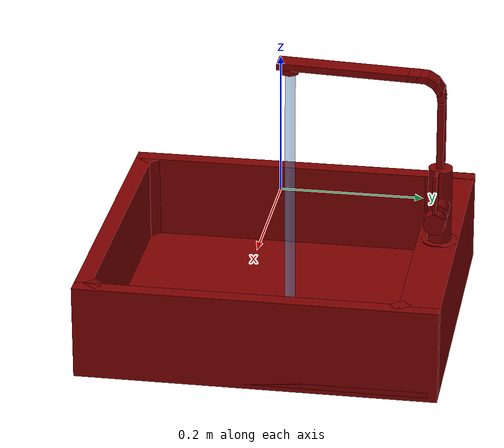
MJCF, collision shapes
<?xml version='1.0' encoding='UTF-8'?>
<mujoco model="model">
  <option timestep="0.002" gravity="0.0 0.0 -9.81"/>
  <compiler angle="radian"/>
  <asset>
    <mesh file="visuals/handle.obj" name="handle_vis"/>
    <mesh file="visuals/Body001.obj" name="Body001_vis"/>
    <mesh file="visuals/spout.obj" name="spout_vis"/>
    <texture file="visuals/T_BC001.png" name="Body001_material" type="2d"/>
    <material name="Body001_material" rgba="1 1 1 1.0" texture="Body001_material" shininess="0.1" specular="5"/>
    <texture file="visuals/T_BC001.png" name="handle_material" type="2d"/>
    <material name="handle_material" rgba="1 1 1 1.0" texture="handle_material" shininess="0.1" specular="5"/>
    <texture file="visuals/T_BC001.png" name="spout_material" type="2d"/>
    <material name="spout_material" rgba="1 1 1 1.0" texture="spout_material" shininess="0.1" specular="5"/>
  </asset>
  <default>
    <default class="visual">
      <geom conaffinity="0" contype="0" group="1" type="mesh"/>
    </default>
    <default class="collision">
      <geom group="0" rgba="0.5 0 0 0.5" solimp="0.998 0.998 0.001" solref="0.001 2"/>
    </default>
    <default class="spawn">
      <geom group="0" rgba="1 1 1 0.5" contype="0" conaffinity="0"/>
      <site group="0" rgba="1 1 1 0.5"/>
    </default>
    <default class="region">
      <geom group="1" conaffinity="0" contype="0" rgba="0 1 0 0"/>
    </default>
  </default>
  <worldbody>
    <body>
      <body name="object">
        <geom mesh="Body001_vis" type="mesh" solimp="0.998 0.998 0.001" solref="0.001 1" friction="0.95 0.3 0.1" class="visual" material="Body001_material"/>
        <geom type="cylinder" pos="0.00013274 0.22498367 -0.00581795" size="0.016698651015758514 0.0544344037771225" quat="0.7071067094802856 0.0 0.0 -0.7071068286895752" class="collision"/>
        <geom type="cylinder" pos="0.00022893 0.22498367 -0.06293694" size="0.025238705798983574 0.002348281443119049" quat="0.7071067094802856 0.0 0.0 -0.7071068286895752" class="collision"/>
        <geom type="cylinder" pos="0.02158878 0.22498367 -0.00602341" size="0.015174861997365952 0.020444747060537338" quat="0.7071068286895752 1.2101623703131281e-08 0.7071067690849304 -1.2101622814952862e-08" class="collision"/>
        <geom type="box" pos="-0.22326328 0.00000023 -0.12871663" size="0.011260626837611198 0.2513779401779175 0.06668765842914581" quat="1.0 0.0 0.0 0.0" class="collision"/>
        <geom type="box" pos="0.22334352 0.00000028 -0.12871663" size="0.01118035800755024 0.25137773156166077 0.06668759137392044" quat="1.0 0.0 0.0 0.0" class="collision"/>
        <geom type="box" pos="-0.00872150 -0.23940448 -0.12871663" size="0.2252243608236313 0.011973206885159016 0.06668765097856522" quat="1.0 0.0 0.0 0.0" class="collision"/>
        <geom type="box" pos="0.00000001 0.00042350 -0.18852685" size="0.2345239818096161 0.2374589592218399 0.006877496372908354" quat="1.0 0.0 0.0 0.0" class="collision"/>
        <geom type="box" pos="-0.00872148 0.22295270 -0.12871662" size="0.22522711753845215 0.028425544500350952 0.06668765097856522" quat="1.0 0.0 0.0 0.0" class="collision"/>
        <geom type="box" pos="0.21455719 -0.22357739 -0.12871663" size="0.011599640361964703 0.009580041281878948 0.06668764352798462" quat="0.43918120861053467 -3.5775858719944154e-08 7.318384831478397e-08 -0.8983985185623169" class="collision"/>
        <geom type="box" pos="-0.21049516 -0.22902475 -0.12871663" size="0.011599640361964703 0.009580040350556374 0.06668765842914581" quat="0.338575154542923 -2.7580441042118764e-08 -7.664925050221427e-08 0.9409393668174744" class="collision"/>
        <geom type="box" pos="-0.21331194 0.19395523 -0.12871662" size="0.011599640361964703 0.009580041281878948 0.06668766587972641" quat="0.9065268039703369 -7.38459888793841e-08 -3.4388353498115976e-08 0.422148197889328" class="collision"/>
        <geom type="box" pos="0.21394131 0.19671448 -0.12871663" size="0.011599640361964703 0.009580041281878948 0.06668765097856522" quat="0.9206199645996094 -7.49940269884064e-08 3.180697660809528e-08 -0.3904598355293274" class="collision"/>
        <body name="handle">
          <joint axis="1.0 0.0 0.0" pos="0.05916828 0.22499300 -0.00593547" limited="true" name="handle_temp_joint" type="hinge" range="-0.7853981633974483 0.7853981633974483" damping="0.5" frictionloss="1" armature="2"/>
          <joint axis="0.0 1.0 0.0" pos="0.05916828 0.22499300 -0.00593547" limited="true" name="handle_joint" type="hinge" range="0 0.5" damping="0.5" frictionloss="1" armature="2"/>
          <geom mesh="handle_vis" type="mesh" solimp="0.998 0.998 0.001" solref="0.001 1" friction="0.95 0.3 0.1" class="visual" material="handle_material"/>
          <geom name="handle_main" type="box" pos="0.05939483 0.22498367 0.03646419" size="0.012284789234399796 0.0028118211776018143 0.028053397312760353" quat="1.0 0.0 0.0 0.0" class="collision"/>
          <geom type="cylinder" pos="0.06279292 0.22498367 -0.00666502" size="0.015174861997365952 0.009489334188401699" quat="0.7071068286895752 1.2101623703131281e-08 0.7071067690849304 -1.2101622814952862e-08" class="collision"/>
        </body>
        <body name="spout">
          <joint axis="0.0 0.0 1.0" pos="0.00020842 0.22513611 0.11921735" limited="true" name="spout_joint" range="-0.7853981633974483 0.7853981633974483" type="hinge" damping="10"/>
          <site type="cylinder" rgba="0.5 0.75 1 0.5" size="0.007300759665668011 0.18885229527950287" pos="-0.00017486 0.01323098 0.00154263" name="water"/>
          <geom mesh="spout_vis" type="mesh" solimp="0.998 0.998 0.001" solref="0.001 1" friction="0.95 0.3 0.1" class="visual" material="spout_material"/>
          <geom type="box" pos="0.00014477 0.22505694 0.10058191" size="0.014651953242719173 0.004856440704315901 0.047547164261341095" quat="1.0 0.0 0.0 0.0" class="collision"/>
          <geom type="box" pos="0.00014475 0.09077517 0.18721798" size="0.004856437910348177 0.014651536010205746 0.09460997581481934" quat="0.4906996488571167 -0.5091297626495361 -0.509149432182312 -0.4906807243824005" class="collision" name="spout_main"/>
          <geom type="box" pos="0.00014476 0.22406494 0.15945125" size="0.004856437910348177 0.014651536010205746 0.008405144326388836" quat="0.7054564952850342 0.04828108102083206 0.04828107729554176 -0.7054566144943237" class="collision"/>
          <geom type="box" pos="0.00014476 0.22029979 0.16952396" size="0.00485643744468689 0.014651536010205746 0.008405144326388836" quat="0.6765242218971252 0.20570605993270874 0.20570604503154755 -0.6765242218971252" class="collision"/>
          <geom type="box" pos="0.00014476 0.21058436 0.17898455" size="0.00485643744468689 0.014651536010205746 0.008405151776969433" quat="0.6162596344947815 0.3467335104942322 0.3467335104942322 -0.6162595748901367" class="collision"/>
          <geom type="box" pos="0.00014476 0.19785782 0.18318692" size="0.004856438841670752 0.014651536010205746 0.008405153639614582" quat="0.5158489942550659 0.48363053798675537 0.48361560702323914 -0.5158655047416687" class="collision"/>
          <geom type="box" pos="0.00014476 0.18699070 0.18380766" size="0.004856437910348177 0.014651536010205746 0.008405153639614582" quat="0.507091224193573 0.49280691146850586 0.4928120970726013 -0.5070858597755432" class="collision"/>
          <geom type="cylinder" pos="0.00000761 0.01287481 0.18148445" size="0.012532871216535568 0.004810836631804705" quat="0.7071067094802856 0.0 0.0 -0.7071068286895752" class="collision"/>
        </body>
        <geom class="region" name="reg_basin" type="box" pos="0.00029342499999999994 -0.016121225000000003 -0.12309403" size="0.205240015 0.20562656499999998 0.05873986"/>
        <geom class="region" name="reg_main" type="box" pos="1.500000000598245e-08 2.699999999966618e-07 -0.12871663" size="0.23552389499999998 0.25237796999999995 0.06768765000000002"/>
      </body>
    </body>
  </worldbody>
  <actuator>
    <motor name="handle_joint_actuator" joint="handle_joint" gear="10"/>
    <motor name="handle_temp_joint_actuator" joint="handle_temp_joint" gear="10"/>
    <motor name="spout_joint_actuator" joint="spout_joint" gear="10"/>
  </actuator>
</mujoco>
